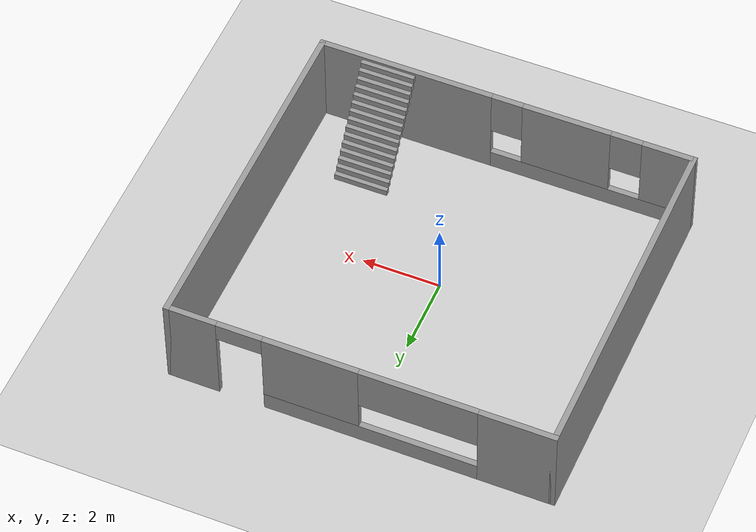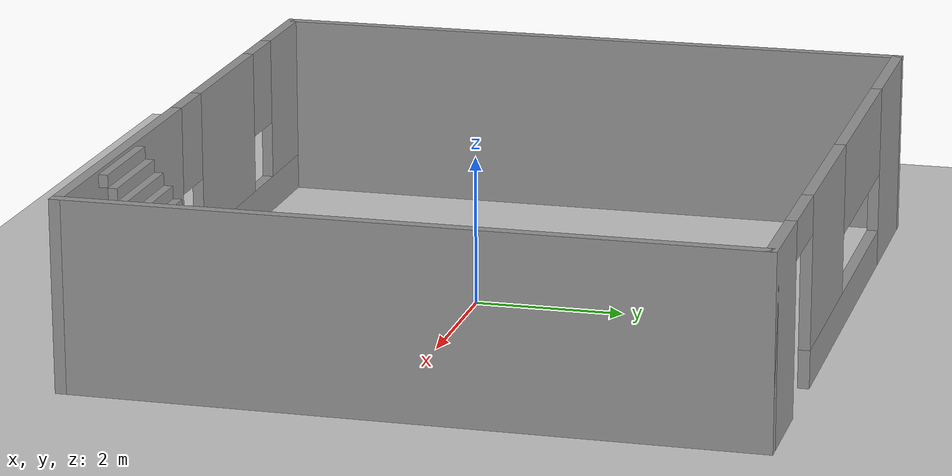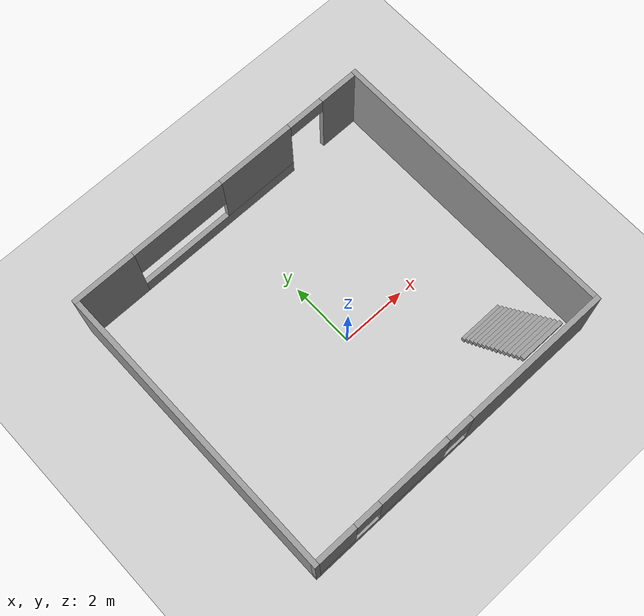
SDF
<sdf version="1.6">
 <world name="default">
  <light name="sun" type="directional">
   <pose>0 0 10 0 -0 0</pose>
   <diffuse>0.8 0.8 0.8 1</diffuse>
   <specular>0.2 0.2 0.2 1</specular>
   <attenuation>
    <range>1000</range>
    <constant>0.9</constant>
    <linear>0.01</linear>
    <quadratic>0.001</quadratic>
   </attenuation>
   <direction>-0.5 0.1 -0.9</direction>
  </light>
  <model name="ground_plane">
   <static>1</static>
   <link name="link">
    <collision name="collision">
     <geometry><plane><normal>0 0 1</normal><size>100 100</size></plane></geometry>
     <surface><friction><ode><mu>100</mu><mu2>50</mu2></ode></friction></surface>
    </collision>
    <visual name="visual">
     <cast_shadows>0</cast_shadows>
     <geometry><plane><normal>0 0 1</normal><size>100 100</size></plane></geometry>
     <material>
      <script><uri>file://media/materials/scripts/gazebo.material</uri><name>Gazebo/Grey</name></script>
     </material>
    </visual>
   </link>
  </model>
  <gravity>0 0 -9.8</gravity>
  <magnetic_field>6e-06 2.3e-05 -4.2e-05</magnetic_field>
  <atmosphere type="adiabatic"/>
  <physics name="default_physics" default="0" type="ode">
   <max_step_size>0.001</max_step_size>
   <real_time_factor>1</real_time_factor>
   <real_time_update_rate>1000</real_time_update_rate>
  </physics>
  <scene><ambient>0.4 0.4 0.4 1</ambient><background>0.7 0.7 0.7 1</background><shadows>1</shadows></scene>
  <spherical_coordinates>
   <surface_model>EARTH_WGS84</surface_model>
   <latitude_deg>0</latitude_deg>
   <longitude_deg>0</longitude_deg>
   <elevation>0</elevation>
   <heading_deg>0</heading_deg>
  </spherical_coordinates>
  <model name="square2">
   <pose>-0.026008 0.397638 0 0 -0 0</pose>
   <link name="Stairs_0">
    <visual name="Stairs_0_Visual_0">
     <pose>2.9921 -2.53936 0.083333 0 -0 0</pose>
     <geometry><box><size>1.38697 0.120761 0.166667</size></box></geometry>
     <material>
      <script><uri>file://media/materials/scripts/gazebo.material</uri><name>Gazebo/Grey</name></script>
      <ambient>1 1 1 1</ambient>
     </material>
     <meta><layer>0</layer></meta>
    </visual>
    <collision name="Stairs_0_Collision_0">
     <geometry><box><size>1.38697 0.120761 0.166667</size></box></geometry>
     <pose>2.9921 -2.53936 0.083333 0 -0 0</pose>
    </collision>
    <visual name="Stairs_0_Visual_1">
     <pose>2.9921 -2.66012 0.25 0 -0 0</pose>
     <geometry><box><size>1.38697 0.120761 0.166667</size></box></geometry>
     <material>
      <script><uri>file://media/materials/scripts/gazebo.material</uri><name>Gazebo/Grey</name></script>
      <ambient>1 1 1 1</ambient>
     </material>
     <meta><layer>0</layer></meta>
    </visual>
    <collision name="Stairs_0_Collision_1">
     <geometry><box><size>1.38697 0.120761 0.166667</size></box></geometry>
     <pose>2.9921 -2.66012 0.25 0 -0 0</pose>
    </collision>
    <visual name="Stairs_0_Visual_2">
     <pose>2.9921 -2.78088 0.416667 0 -0 0</pose>
     <geometry><box><size>1.38697 0.120761 0.166667</size></box></geometry>
     <material>
      <script><uri>file://media/materials/scripts/gazebo.material</uri><name>Gazebo/Grey</name></script>
      <ambient>1 1 1 1</ambient>
     </material>
     <meta><layer>0</layer></meta>
    </visual>
    <collision name="Stairs_0_Collision_2">
     <geometry><box><size>1.38697 0.120761 0.166667</size></box></geometry>
     <pose>2.9921 -2.78088 0.416667 0 -0 0</pose>
    </collision>
    <visual name="Stairs_0_Visual_3">
     <pose>2.9921 -2.90164 0.583333 0 -0 0</pose>
     <geometry><box><size>1.38697 0.120761 0.166667</size></box></geometry>
     <material>
      <script><uri>file://media/materials/scripts/gazebo.material</uri><name>Gazebo/Grey</name></script>
      <ambient>1 1 1 1</ambient>
     </material>
     <meta><layer>0</layer></meta>
    </visual>
    <collision name="Stairs_0_Collision_3">
     <geometry><box><size>1.38697 0.120761 0.166667</size></box></geometry>
     <pose>2.9921 -2.90164 0.583333 0 -0 0</pose>
    </collision>
    <visual name="Stairs_0_Visual_4">
     <pose>2.9921 -3.0224 0.75 0 -0 0</pose>
     <geometry><box><size>1.38697 0.120761 0.166667</size></box></geometry>
     <material>
      <script><uri>file://media/materials/scripts/gazebo.material</uri><name>Gazebo/Grey</name></script>
      <ambient>1 1 1 1</ambient>
     </material>
     <meta><layer>0</layer></meta>
    </visual>
    <collision name="Stairs_0_Collision_4">
     <geometry><box><size>1.38697 0.120761 0.166667</size></box></geometry>
     <pose>2.9921 -3.0224 0.75 0 -0 0</pose>
    </collision>
    <visual name="Stairs_0_Visual_5">
     <pose>2.9921 -3.14316 0.916667 0 -0 0</pose>
     <geometry><box><size>1.38697 0.120761 0.166667</size></box></geometry>
     <material>
      <script><uri>file://media/materials/scripts/gazebo.material</uri><name>Gazebo/Grey</name></script>
      <ambient>1 1 1 1</ambient>
     </material>
     <meta><layer>0</layer></meta>
    </visual>
    <collision name="Stairs_0_Collision_5">
     <geometry><box><size>1.38697 0.120761 0.166667</size></box></geometry>
     <pose>2.9921 -3.14316 0.916667 0 -0 0</pose>
    </collision>
    <visual name="Stairs_0_Visual_6">
     <pose>2.9921 -3.26392 1.08333 0 -0 0</pose>
     <geometry><box><size>1.38697 0.120761 0.166667</size></box></geometry>
     <material>
      <script><uri>file://media/materials/scripts/gazebo.material</uri><name>Gazebo/Grey</name></script>
      <ambient>1 1 1 1</ambient>
     </material>
     <meta><layer>0</layer></meta>
    </visual>
    <collision name="Stairs_0_Collision_6">
     <geometry><box><size>1.38697 0.120761 0.166667</size></box></geometry>
     <pose>2.9921 -3.26392 1.08333 0 -0 0</pose>
    </collision>
    <visual name="Stairs_0_Visual_7">
     <pose>2.9921 -3.38469 1.25 0 -0 0</pose>
     <geometry><box><size>1.38697 0.120761 0.166667</size></box></geometry>
     <material>
      <script><uri>file://media/materials/scripts/gazebo.material</uri><name>Gazebo/Grey</name></script>
      <ambient>1 1 1 1</ambient>
     </material>
     <meta><layer>0</layer></meta>
    </visual>
    <collision name="Stairs_0_Collision_7">
     <geometry><box><size>1.38697 0.120761 0.166667</size></box></geometry>
     <pose>2.9921 -3.38469 1.25 0 -0 0</pose>
    </collision>
    <visual name="Stairs_0_Visual_8">
     <pose>2.9921 -3.50545 1.41667 0 -0 0</pose>
     <geometry><box><size>1.38697 0.120761 0.166667</size></box></geometry>
     <material>
      <script><uri>file://media/materials/scripts/gazebo.material</uri><name>Gazebo/Grey</name></script>
      <ambient>1 1 1 1</ambient>
     </material>
     <meta><layer>0</layer></meta>
    </visual>
    <collision name="Stairs_0_Collision_8">
     <geometry><box><size>1.38697 0.120761 0.166667</size></box></geometry>
     <pose>2.9921 -3.50545 1.41667 0 -0 0</pose>
    </collision>
    <visual name="Stairs_0_Visual_9">
     <pose>2.9921 -3.62621 1.58333 0 -0 0</pose>
     <geometry><box><size>1.38697 0.120761 0.166667</size></box></geometry>
     <material>
      <script><uri>file://media/materials/scripts/gazebo.material</uri><name>Gazebo/Grey</name></script>
      <ambient>1 1 1 1</ambient>
     </material>
     <meta><layer>0</layer></meta>
    </visual>
    <collision name="Stairs_0_Collision_9">
     <geometry><box><size>1.38697 0.120761 0.166667</size></box></geometry>
     <pose>2.9921 -3.62621 1.58333 0 -0 0</pose>
    </collision>
    <visual name="Stairs_0_Visual_10">
     <pose>2.9921 -3.74697 1.75 0 -0 0</pose>
     <geometry><box><size>1.38697 0.120761 0.166667</size></box></geometry>
     <material>
      <script><uri>file://media/materials/scripts/gazebo.material</uri><name>Gazebo/Grey</name></script>
      <ambient>1 1 1 1</ambient>
     </material>
     <meta><layer>0</layer></meta>
    </visual>
    <collision name="Stairs_0_Collision_10">
     <geometry><box><size>1.38697 0.120761 0.166667</size></box></geometry>
     <pose>2.9921 -3.74697 1.75 0 -0 0</pose>
    </collision>
    <visual name="Stairs_0_Visual_11">
     <pose>2.9921 -3.86773 1.91667 0 -0 0</pose>
     <geometry><box><size>1.38697 0.120761 0.166667</size></box></geometry>
     <material>
      <script><uri>file://media/materials/scripts/gazebo.material</uri><name>Gazebo/Grey</name></script>
      <ambient>1 1 1 1</ambient>
     </material>
     <meta><layer>0</layer></meta>
    </visual>
    <collision name="Stairs_0_Collision_11">
     <geometry><box><size>1.38697 0.120761 0.166667</size></box></geometry>
     <pose>2.9921 -3.86773 1.91667 0 -0 0</pose>
    </collision>
    <visual name="Stairs_0_Visual_12">
     <pose>2.9921 -3.98849 2.08333 0 -0 0</pose>
     <geometry><box><size>1.38697 0.120761 0.166667</size></box></geometry>
     <material>
      <script><uri>file://media/materials/scripts/gazebo.material</uri><name>Gazebo/Grey</name></script>
      <ambient>1 1 1 1</ambient>
     </material>
     <meta><layer>0</layer></meta>
    </visual>
    <collision name="Stairs_0_Collision_12">
     <geometry><box><size>1.38697 0.120761 0.166667</size></box></geometry>
     <pose>2.9921 -3.98849 2.08333 0 -0 0</pose>
    </collision>
    <visual name="Stairs_0_Visual_13">
     <pose>2.9921 -4.10925 2.25 0 -0 0</pose>
     <geometry><box><size>1.38697 0.120761 0.166667</size></box></geometry>
     <material>
      <script><uri>file://media/materials/scripts/gazebo.material</uri><name>Gazebo/Grey</name></script>
      <ambient>1 1 1 1</ambient>
     </material>
     <meta><layer>0</layer></meta>
    </visual>
    <collision name="Stairs_0_Collision_13">
     <geometry><box><size>1.38697 0.120761 0.166667</size></box></geometry>
     <pose>2.9921 -4.10925 2.25 0 -0 0</pose>
    </collision>
    <visual name="Stairs_0_Visual_14">
     <pose>2.9921 -4.23001 2.41667 0 -0 0</pose>
     <geometry><box><size>1.38697 0.120761 0.166667</size></box></geometry>
     <material>
      <script><uri>file://media/materials/scripts/gazebo.material</uri><name>Gazebo/Grey</name></script>
      <ambient>1 1 1 1</ambient>
     </material>
     <meta><layer>0</layer></meta>
    </visual>
    <collision name="Stairs_0_Collision_14">
     <geometry><box><size>1.38697 0.120761 0.166667</size></box></geometry>
     <pose>2.9921 -4.23001 2.41667 0 -0 0</pose>
    </collision>
   </link>
   <link name="Wall_0">
    <pose>0 4.425 0 0 -0 0</pose>
    <visual name="Wall_0_Visual_0">
     <pose>-3.91178 0 1.25 0 -0 0</pose>
     <geometry><box><size>1.92644 0.15 2.5</size></box></geometry>
     <material>
      <script><uri>file://media/materials/scripts/gazebo.material</uri><name>Gazebo/Grey</name></script>
      <ambient>1 1 1 1</ambient>
     </material>
     <meta><layer>0</layer></meta>
    </visual>
    <collision name="Wall_0_Collision_0">
     <geometry><box><size>1.92644 0.15 2.5</size></box></geometry>
     <pose>-3.91178 0 1.25 0 -0 0</pose>
    </collision>
    <visual name="Wall_0_Visual_1">
     <pose>4.21132 0 1.25 0 -0 0</pose>
     <geometry><box><size>1.32737 0.15 2.5</size></box></geometry>
     <material>
      <script><uri>file://media/materials/scripts/gazebo.material</uri><name>Gazebo/Grey</name></script>
      <ambient>1 1 1 1</ambient>
     </material>
     <meta><layer>0</layer></meta>
    </visual>
    <collision name="Wall_0_Collision_1">
     <geometry><box><size>1.32737 0.15 2.5</size></box></geometry>
     <pose>4.21132 0 1.25 0 -0 0</pose>
    </collision>
    <visual name="Wall_0_Visual_2">
     <pose>-0.273589 0 0.25 0 -0 0</pose>
     <geometry><box><size>5.34994 0.15 0.5</size></box></geometry>
     <material>
      <script><uri>file://media/materials/scripts/gazebo.material</uri><name>Gazebo/Grey</name></script>
      <ambient>1 1 1 1</ambient>
     </material>
     <meta><layer>0</layer></meta>
    </visual>
    <collision name="Wall_0_Collision_2">
     <geometry><box><size>5.34994 0.15 0.5</size></box></geometry>
     <pose>-0.273589 0 0.25 0 -0 0</pose>
    </collision>
    <visual name="Wall_0_Visual_3">
     <pose>1.19936 0 1.5 0 -0 0</pose>
     <geometry><box><size>2.40404 0.15 2</size></box></geometry>
     <material>
      <script><uri>file://media/materials/scripts/gazebo.material</uri><name>Gazebo/Grey</name></script>
      <ambient>1 1 1 1</ambient>
     </material>
     <meta><layer>0</layer></meta>
    </visual>
    <collision name="Wall_0_Collision_3">
     <geometry><box><size>2.40404 0.15 2</size></box></geometry>
     <pose>1.19936 0 1.5 0 -0 0</pose>
    </collision>
    <visual name="Wall_0_Visual_4">
     <pose>-1.47561 0 1.9 0 -0 0</pose>
     <geometry><box><size>2.94591 0.15 1.2</size></box></geometry>
     <material>
      <script><uri>file://media/materials/scripts/gazebo.material</uri><name>Gazebo/Grey</name></script>
      <ambient>1 1 1 1</ambient>
     </material>
     <meta><layer>0</layer></meta>
    </visual>
    <collision name="Wall_0_Collision_4">
     <geometry><box><size>2.94591 0.15 1.2</size></box></geometry>
     <pose>-1.47561 0 1.9 0 -0 0</pose>
    </collision>
    <visual name="Wall_0_Visual_5">
     <pose>2.97451 0 2.25 0 -0 0</pose>
     <geometry><box><size>1.14625 0.15 0.5</size></box></geometry>
     <material>
      <script><uri>file://media/materials/scripts/gazebo.material</uri><name>Gazebo/Grey</name></script>
      <ambient>1 1 1 1</ambient>
     </material>
     <meta><layer>0</layer></meta>
    </visual>
    <collision name="Wall_0_Collision_5">
     <geometry><box><size>1.14625 0.15 0.5</size></box></geometry>
     <pose>2.97451 0 2.25 0 -0 0</pose>
    </collision>
   </link>
   <link name="Wall_1">
    <collision name="Wall_1_Collision">
     <geometry><box><size>9 0.15 2.5</size></box></geometry>
     <pose>0 0 1.25 0 -0 0</pose>
    </collision>
    <visual name="Wall_1_Visual">
     <pose>0 0 1.25 0 -0 0</pose>
     <geometry><box><size>9 0.15 2.5</size></box></geometry>
     <material>
      <script><uri>file://media/materials/scripts/gazebo.material</uri><name>Gazebo/Grey</name></script>
      <ambient>1 1 1 1</ambient>
     </material>
     <meta><layer>0</layer></meta>
    </visual>
    <pose>4.8 0 0 0 0 -1.5708</pose>
   </link>
   <link name="Wall_2">
    <pose>0 -4.425 0 0 -0 3.14159</pose>
    <visual name="Wall_2_Visual_0">
     <pose>-2.61207 0 1.25 0 -0 0</pose>
     <geometry><box><size>4.52587 0.15 2.5</size></box></geometry>
     <material>
      <script><uri>file://media/materials/scripts/gazebo.material</uri><name>Gazebo/Grey</name></script>
      <ambient>1 1 1 1</ambient>
     </material>
     <meta><layer>0</layer></meta>
    </visual>
    <collision name="Wall_2_Collision_0">
     <geometry><box><size>4.52587 0.15 2.5</size></box></geometry>
     <pose>-2.61207 0 1.25 0 -0 0</pose>
    </collision>
    <visual name="Wall_2_Visual_1">
     <pose>2.26293 0 0.25 0 -0 0</pose>
     <geometry><box><size>5.22413 0.15 0.5</size></box></geometry>
     <material>
      <script><uri>file://media/materials/scripts/gazebo.material</uri><name>Gazebo/Grey</name></script>
      <ambient>1 1 1 1</ambient>
     </material>
     <meta><layer>0</layer></meta>
    </visual>
    <collision name="Wall_2_Collision_1">
     <geometry><box><size>5.22413 0.15 0.5</size></box></geometry>
     <pose>2.26293 0 0.25 0 -0 0</pose>
    </collision>
    <visual name="Wall_2_Visual_2">
     <pose>1.58114 0 1.5 0 -0 0</pose>
     <geometry><box><size>2.26055 0.15 2</size></box></geometry>
     <material>
      <script><uri>file://media/materials/scripts/gazebo.material</uri><name>Gazebo/Grey</name></script>
      <ambient>1 1 1 1</ambient>
     </material>
     <meta><layer>0</layer></meta>
    </visual>
    <collision name="Wall_2_Collision_2">
     <geometry><box><size>2.26055 0.15 2</size></box></geometry>
     <pose>1.58114 0 1.5 0 -0 0</pose>
    </collision>
    <visual name="Wall_2_Visual_3">
     <pose>4.19321 0 1.5 0 -0 0</pose>
     <geometry><box><size>1.36358 0.15 2</size></box></geometry>
     <material>
      <script><uri>file://media/materials/scripts/gazebo.material</uri><name>Gazebo/Grey</name></script>
      <ambient>1 1 1 1</ambient>
     </material>
     <meta><layer>0</layer></meta>
    </visual>
    <collision name="Wall_2_Collision_3">
     <geometry><box><size>1.36358 0.15 2</size></box></geometry>
     <pose>4.19321 0 1.5 0 -0 0</pose>
    </collision>
    <visual name="Wall_2_Visual_4">
     <pose>0.050867 0 1.9 0 -0 0</pose>
     <geometry><box><size>0.8 0.15 1.2</size></box></geometry>
     <material>
      <script><uri>file://media/materials/scripts/gazebo.material</uri><name>Gazebo/Grey</name></script>
      <ambient>1 1 1 1</ambient>
     </material>
     <meta><layer>0</layer></meta>
    </visual>
    <collision name="Wall_2_Collision_4">
     <geometry><box><size>0.8 0.15 1.2</size></box></geometry>
     <pose>0.050867 0 1.9 0 -0 0</pose>
    </collision>
    <visual name="Wall_2_Visual_5">
     <pose>3.11142 0 1.9 0 -0 0</pose>
     <geometry><box><size>0.8 0.15 1.2</size></box></geometry>
     <material>
      <script><uri>file://media/materials/scripts/gazebo.material</uri><name>Gazebo/Grey</name></script>
      <ambient>1 1 1 1</ambient>
     </material>
     <meta><layer>0</layer></meta>
    </visual>
    <collision name="Wall_2_Collision_5">
     <geometry><box><size>0.8 0.15 1.2</size></box></geometry>
     <pose>3.11142 0 1.9 0 -0 0</pose>
    </collision>
   </link>
   <link name="Wall_3">
    <collision name="Wall_3_Collision">
     <geometry><box><size>9 0.15 2.5</size></box></geometry>
     <pose>0 0 1.25 0 -0 0</pose>
    </collision>
    <visual name="Wall_3_Visual">
     <pose>0 0 1.25 0 -0 0</pose>
     <geometry><box><size>9 0.15 2.5</size></box></geometry>
     <material>
      <script><uri>file://media/materials/scripts/gazebo.material</uri><name>Gazebo/Grey</name></script>
      <ambient>1 1 1 1</ambient>
     </material>
     <meta><layer>0</layer></meta>
    </visual>
    <pose>-4.8 0 0 0 -0 1.5708</pose>
   </link>
   <static>1</static>
  </model>
 </world>
</sdf>
